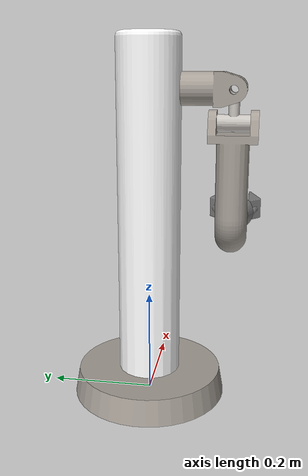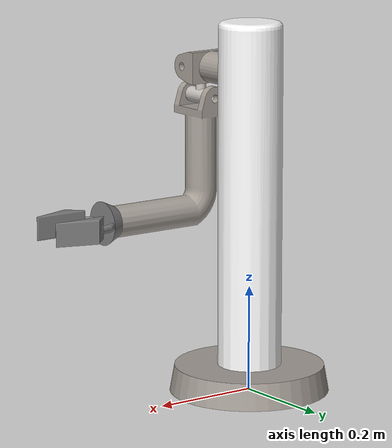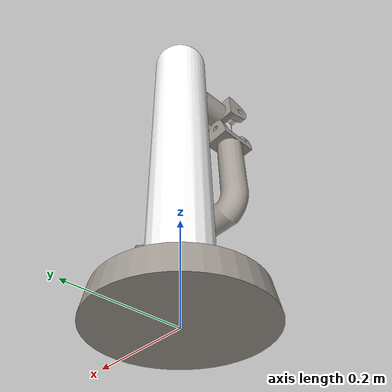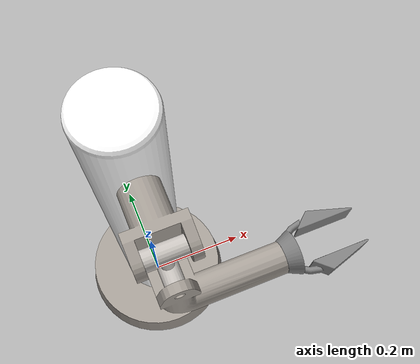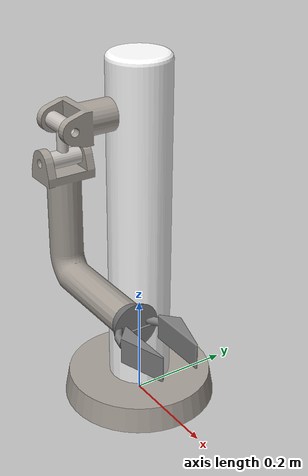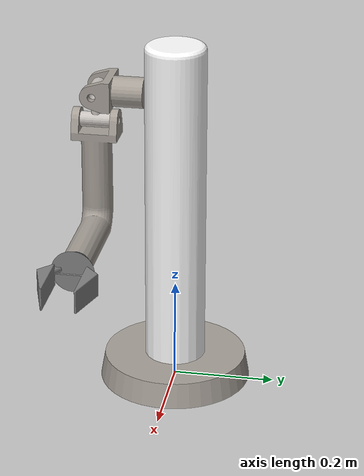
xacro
<?xml version="1.0" encoding="utf-8"?>

<robot name="human_arm" xmlns:xacro="http://www.ros.org/wiki/xacro">

  <xacro:macro name="transmission_block" params="joint_name">
	  <transmission name="tran1">
	    <type>transmission_interface/SimpleTransmission</type>
	    <joint name="${joint_name}">
	      <hardwareInterface>hardware_interface/PositionJointInterface</hardwareInterface>
	    </joint>
	    <actuator name="motor1_${joint_name}">
	      <hardwareInterface>hardware_interface/PositionJointInterface</hardwareInterface>
	      <mechanicalReduction>1</mechanicalReduction>
	    </actuator>
	  </transmission>
   </xacro:macro>

  <link name="base_link">
    <inertial>
      <origin
        xyz="-3.1945E-35 0.024496 4.1754E-19"
        rpy="0 0 0" />
      <mass
        value="26.312" />
      <inertia
        ixx="0.14512"
        ixy="-1.851E-34"
        ixz="-1.1318E-33"
        iyy="0.27929"
        iyz="-1.4632E-18"
        izz="0.14512" />
    </inertial>
    <visual>
      <origin
        xyz="0 0 0"
        rpy="0 0 0" />
      <geometry>
        <mesh
          filename="package://human_arm/meshes/base_link.STL" />
      </geometry>
      <material
        name="">
        <color
          rgba="0.64706 0.61961 0.58824 1" />
      </material>
    </visual>
    <collision>
      <origin
        xyz="0 0 0"
        rpy="0 0 0" />
      <geometry>
        <mesh
          filename="package://human_arm/meshes/base_link.STL" />
      </geometry>
    </collision>
  </link>

  <gazebo reference="base_link">
		<material>Gazebo/ZincYellow</material>
    </gazebo>

  <link name="body">
    <inertial>
      <origin
        xyz="5.6474E-18 0.32466 1.8027E-18"
        rpy="0 0 0" />
      <mass
        value="4.4061" />
      <inertia
        ixx="0.15877"
        ixy="-1.1461E-34"
        ixz="-5.1672E-36"
        iyy="0.0079238"
        iyz="3.48E-18"
        izz="0.15877" />
    </inertial>
    <visual>
      <origin
        xyz="0 0 0"
        rpy="0 0 0" />
      <geometry>
        <mesh
          filename="package://human_arm/meshes/body.STL" />
      </geometry>
      <material
        name="">
        <color
          rgba="1 1 1 1" />
      </material>
    </visual>
    <collision>
      <origin
        xyz="0 0 0"
        rpy="0 0 0" />
      <geometry>
        <mesh
          filename="package://human_arm/meshes/body.STL" />
      </geometry>
    </collision>
  </link>

  <gazebo reference="body">
		<material>Gazebo/WoodFloor</material>
    </gazebo>

  <joint
    name="body_joint"
    type="revolute">
    <origin
      xyz="0 0 0.05"
      rpy="1.5708 0 0" />
    <parent
      link="base_link" />
    <child
      link="body" />
    <axis
      xyz="0 1 0" />
    <limit
      lower="-3.14"
      upper="3.14"
      effort="30"
      velocity="5" />
    <dynamics
      damping="30"
      friction="0.3" />
  </joint>

  <link
    name="shoulder">
    <inertial>
      <origin
        xyz="0 1.8186E-17 0.024183"
        rpy="0 0 0" />
      <mass
        value="2.3865" />
      <inertia
        ixx="0.0032755"
        ixy="-6.7071E-20"
        ixz="9.8343E-20"
        iyy="0.0025453"
        iyz="1.2827E-18"
        izz="0.0018949" />
    </inertial>
    <visual>
      <origin
        xyz="0 0 0"
        rpy="0 0 0" />
      <geometry>
        <mesh
          filename="package://human_arm/meshes/shoulder.STL" />
      </geometry>
      <material
        name="">
        <color
          rgba="0.64706 0.61961 0.58824 1" />
      </material>
    </visual>
    <collision>
      <origin
        xyz="0 0 0"
        rpy="0 0 0" />
      <geometry>
        <mesh
          filename="package://human_arm/meshes/shoulder.STL" />
      </geometry>
    </collision>
  </link>

  <gazebo reference="shoulder">
		<material>Gazebo/DarkYellow</material>
    </gazebo>

  <joint
    name="shoulder_joint"
    type="fixed">
    <origin
      xyz="0 0.55 0.135"
      rpy="3.1416 0 -1.5708" />
    <parent
      link="body" />
    <child
      link="shoulder" />
    <axis
      xyz="0 0 0" />
  </joint>

  <link
    name="shoulder_move_1">
    <inertial>
      <origin
        xyz="0.03 1.0081E-08 -1.8496E-08"
        rpy="0 0 0" />
      <mass
        value="0.54422" />
      <inertia
        ixx="0.00017789"
        ixy="-5.8805E-11"
        ixz="-1.5366E-11"
        iyy="0.00054987"
        iyz="-1.9851E-11"
        izz="0.00054987" />
    </inertial>
    <visual>
      <origin
        xyz="0 0 0"
        rpy="0 0 0" />
      <geometry>
        <mesh
          filename="package://human_arm/meshes/shoulder_move_1.STL" />
      </geometry>
      <material
        name="">
        <color
          rgba="0.77647 0.75686 0.73725 1" />
      </material>
    </visual>
    <collision>
      <origin
        xyz="0 0 0"
        rpy="0 0 0" />
      <geometry>
        <mesh
          filename="package://human_arm/meshes/shoulder_move_1.STL" />
      </geometry>
    </collision>
  </link>

  <gazebo reference="shoulder_move_1">
		<material>Gazebo/Yellow</material>
    </gazebo>

  <joint
    name="shoulder_move_1_joint"
    type="revolute">
    <origin
      xyz="0 0 -0.02"
      rpy="3.1416 0 0" />
    <parent
      link="shoulder" />
    <child
      link="shoulder_move_1" />
    <axis
      xyz="0 1 0" />
    <limit
      lower="-3.14"
      upper="0.19"
      effort="30"
      velocity="5" />
    <dynamics
      damping="30"
      friction="0.3" />
  </joint>

  <link
    name="upper_arm">
    <inertial>
      <origin
        xyz="-0.048479 -8.4265E-09 0.13577"
        rpy="0 0 0" />
      <mass
        value="9.2964" />
      <inertia
        ixx="0.055721"
        ixy="5.3221E-09"
        ixz="0.028252"
        iyy="0.092902"
        iyz="5.3199E-09"
        izz="0.042917" />
    </inertial>
    <visual>
      <origin
        xyz="0 0 0"
        rpy="0 0 0" />
      <geometry>
        <mesh
          filename="package://human_arm/meshes/upper_arm.STL" />
      </geometry>
      <material
        name="">
        <color
          rgba="0.64706 0.61961 0.58824 1" />
      </material>
    </visual>
    <collision>
      <origin
        xyz="0 0 0"
        rpy="0 0 0" />
      <geometry>
        <mesh
          filename="package://human_arm/meshes/upper_arm.STL" />
      </geometry>
    </collision>
  </link>

  <joint
    name="upper_arm_joint"
    type="revolute">
    <origin
      xyz="0.08 0 0"
      rpy="-1.5708 0 -1.5708" />
    <parent
      link="shoulder_move_1" />
    <child
      link="upper_arm" />
    <axis
      xyz="0 1 0" />
    <limit
      lower="-2"
      upper="1.5708"
      effort="10"
      velocity="5" />
    <dynamics
      damping="30"
      friction="0.5" />
  </joint>

  <gazebo reference="upper_arm">
		<material>Gazebo/RedBright</material>
    </gazebo>

  <link
    name="gripper_base">
    <inertial>
      <origin
        xyz="0.045967 -8.9936E-06 -0.017797"
        rpy="0 0 0" />
      <mass
        value="0.16718" />
      <inertia
        ixx="7.7538E-05"
        ixy="3.7557E-08"
        ixz="-2.6947E-06"
        iyy="9.4496E-05"
        iyz="-8.1158E-09"
        izz="0.00010526" />
    </inertial>
    <visual>
      <origin
        xyz="0 0 0"
        rpy="0 0 0" />
      <geometry>
        <mesh
          filename="package://human_arm/meshes/gripper_base.STL" />
      </geometry>
      <material
        name="">
        <color
          rgba="0.49804 0.49804 0.49804 1" />
      </material>
    </visual>
    <collision>
      <origin
        xyz="0 0 0"
        rpy="0 0 0" />
      <geometry>
        <mesh
          filename="package://human_arm/meshes/gripper_base.STL" />
      </geometry>
    </collision>
  </link>

  <joint
    name="gripper_base_joint"
    type="fixed">
    <origin
      xyz="-0.20136 0 0.19843"
      rpy="-1.5708 0 -3.1416" />
    <parent
      link="upper_arm" />
    <child
      link="gripper_base" />
    <axis
      xyz="0 0 0" />
  </joint>

    <gazebo reference="gripper_base">
		<material>Gazebo/SkyBlue</material>
    </gazebo>

  <link
    name="gripper_finger">
    <inertial>
      <origin
        xyz="0.065584 -1.9921E-05 -0.0094203"
        rpy="0 0 0" />
      <mass
        value="0.075478" />
      <inertia
        ixx="1.4968E-05"
        ixy="3.7557E-08"
        ixz="-2.6947E-06"
        iyy="5.9785E-05"
        iyz="-8.1158E-09"
        izz="6.8422E-05" />
    </inertial>
    <visual>
      <origin
        xyz="0 0 0"
        rpy="0 0 0" />
      <geometry>
        <mesh
          filename="package://human_arm/meshes/gripper_finger.STL" />
      </geometry>
      <material
        name="">
        <color
          rgba="0.49804 0.49804 0.49804 1" />
      </material>
    </visual>
    <collision>
      <origin
        xyz="0 0 0"
        rpy="0 0 0" />
      <geometry>
        <mesh
          filename="package://human_arm/meshes/gripper_finger.STL" />
      </geometry>
    </collision>
  </link>

  <joint
    name="gripper_finger_joint"
    type="prismatic">
    <origin
      xyz="0.02 0 0.03"
      rpy="3.1416 0 0" />
    <parent
      link="gripper_base" />
    <child
      link="gripper_finger" />
    <axis
      xyz="0 0 1" />
    <limit
      lower="0"
      upper="0.055"
      effort="30"
      velocity="5" />
    <dynamics
      damping="30"
      friction="0.3" />
  </joint>

    <gazebo reference="gripper_finger">
		<material>Gazebo/Purple</material>
    </gazebo>

  <xacro:transmission_block joint_name="body_joint"/>
  <xacro:transmission_block joint_name="shoulder_move_1_joint"/>
  <xacro:transmission_block joint_name="upper_arm_joint"/>
  <xacro:transmission_block joint_name="gripper_finger_joint"/>

  <!-- ros_control plugin -->
  <gazebo>
    <plugin name="gazebo_ros_control" filename="libgazebo_ros_control.so">
      <robotNamespace>/human_arm</robotNamespace>
    </plugin>
  </gazebo>

</robot>
